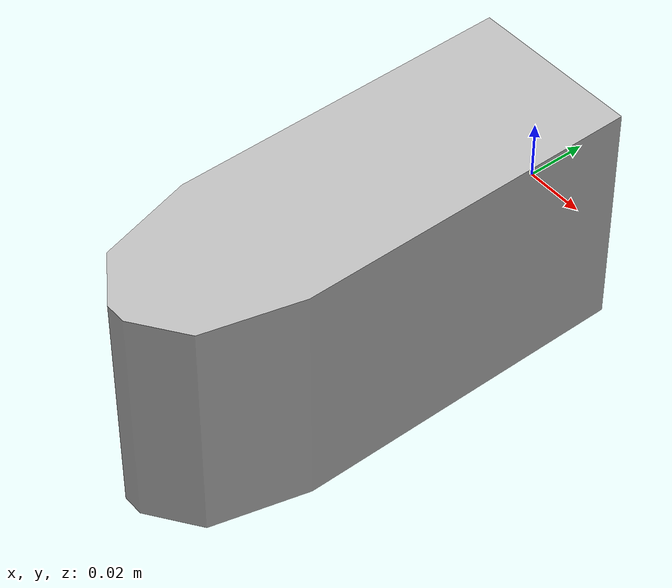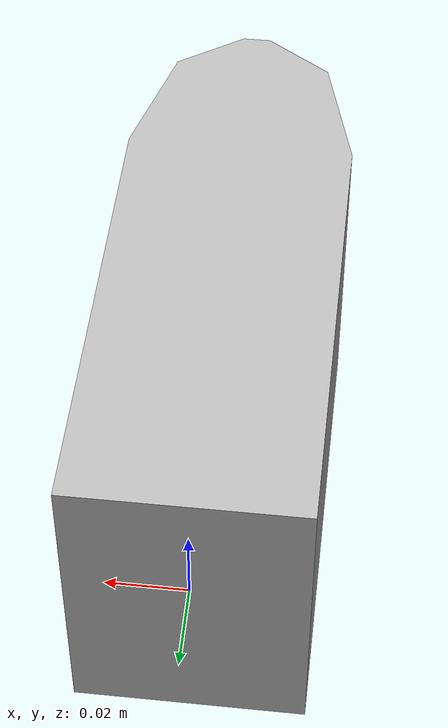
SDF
<?xml version="1.0" ?>
<sdf version="1.6" xmlns:drake="drake.mit.edu">
  <model name="paddle">
    <link name="dummy_1">
      <pose>0 0 0 0 0 0</pose>
      <inertial>
        <pose>0 0 0 0 0 0</pose>
        <mass>0.01</mass>
        <inertia>
          <ixx> 0.00001</ixx>
          <ixy> 0.000000</ixy>
          <ixz> 0.0000</ixz>
          <iyy> 0.00001</iyy>
          <iyz> 0.000000</iyz>
          <izz> 0.00001</izz>
        </inertia>
      </inertial>
    </link>
    <link name="dummy_2">
      <pose>0 0 0 0 0 0</pose>
      <inertial>
        <pose>0 0 0 0 0 0</pose>
        <mass>0.01</mass>
        <inertia>
          <ixx> 0.00001</ixx>
          <ixy> 0.000000</ixy>
          <ixz> 0.0000</ixz>
          <iyy> 0.00001</iyy>
          <iyz> 0.000000</iyz>
          <izz> 0.00001</izz>
        </inertia>
      </inertial>
    </link>
    <link name="dummy_3">
      <pose>0 0 0 0 0 0</pose>
      <inertial>
        <pose>0 0 0 0 0 0</pose>
        <mass>0.01</mass>
        <inertia>
          <ixx> 0.00001</ixx>
          <ixy> 0.000000</ixy>
          <ixz> 0.0000</ixz>
          <iyy> 0.00001</iyy>
          <iyz> 0.000000</iyz>
          <izz> 0.00001</izz>
        </inertia>
      </inertial>
    </link>
    <link name="paddle">
      <pose>0 0 0 0 0 0</pose>
      <inertial>
        <!-- Assume a density of 250 kg/m^3 -->
        <pose>0 0 0 0 0 0</pose>
        <mass>0.16680778</mass>
        <inertia>
          <ixx> 1.16112052e-03</ixx>
          <ixy> -1.15805286e-20</ixy>
          <ixz> -4.13590306e-22</ixz>
          <iyy> 1.30906051e-04</iyy>
          <iyz> 0.000000</iyz>
          <izz> 1.11409827e-03</izz>
        </inertia>
      </inertial>
      <visual name="paddle_visual">
        <pose>0 0 0 0 0 0</pose>
        <geometry>
          <mesh>
            <drake:declare_convex/>
            <uri>paddle.obj</uri>
            <scale>1.0 1.0 1.0</scale>
          </mesh>
        </geometry>
      </visual>
      <collision name="paddle_collision">
        <pose>0 0 0 0 0 0</pose>
        <geometry>
          <mesh>
            <drake:declare_convex/>
            <uri>paddle.obj</uri>
            <scale>1.0 1.0 1.0</scale>
          </mesh>
        </geometry>
        <drake:proximity_properties>
          <drake:mu_dynamic>1.0</drake:mu_dynamic>
          <drake:mu_static>1.0</drake:mu_static>
          <drake:mesh_resolution_hint>0.05</drake:mesh_resolution_hint>
          <drake:hydroelastic_modulus>3e3</drake:hydroelastic_modulus>
          <drake:hunt_crossley_dissipation>5.0</drake:hunt_crossley_dissipation>
          <drake:compliant_hydroelastic/>
        </drake:proximity_properties>
      </collision>
    </link>
    <joint name="x_joint" type="prismatic">
      <parent>dummy_1</parent>
      <child>dummy_2</child>
      <axis>
        <xyz>1 0 0</xyz>
        <!-- Drake attaches an actuator to all and only joints with a nonzero
             effort limit. -->
        <limit>
          <lower>-0.5</lower>
          <upper>0.5</upper>
          <effort>10</effort>
        </limit>
        <dynamics>
          <damping>0.1</damping>
          <friction>0</friction>
        </dynamics>
      </axis>
    </joint>
    <joint name="y_joint" type="prismatic">
      <parent>dummy_2</parent>
      <child>dummy_3</child>
      <axis>
        <xyz>0 1 0</xyz>
        <limit>
          <lower>-0.8</lower>
          <upper>0</upper>
          <effort>10</effort>
        </limit>
        <dynamics>
          <damping>0.1</damping>
          <friction>0</friction>
        </dynamics>
      </axis>
    </joint>
    <joint name="theta_joint" type="revolute">
      <parent>dummy_3</parent>
      <child>paddle</child>
      <axis>
        <xyz>0 0 1</xyz>
        <limit>
          <lower>-3.14</lower>
          <upper>3.14</upper>
          <effort>10</effort>
        </limit>
        <dynamics>
          <damping>.01</damping>
          <friction>0</friction>
        </dynamics>
      </axis>
    </joint>
  </model>
</sdf>
